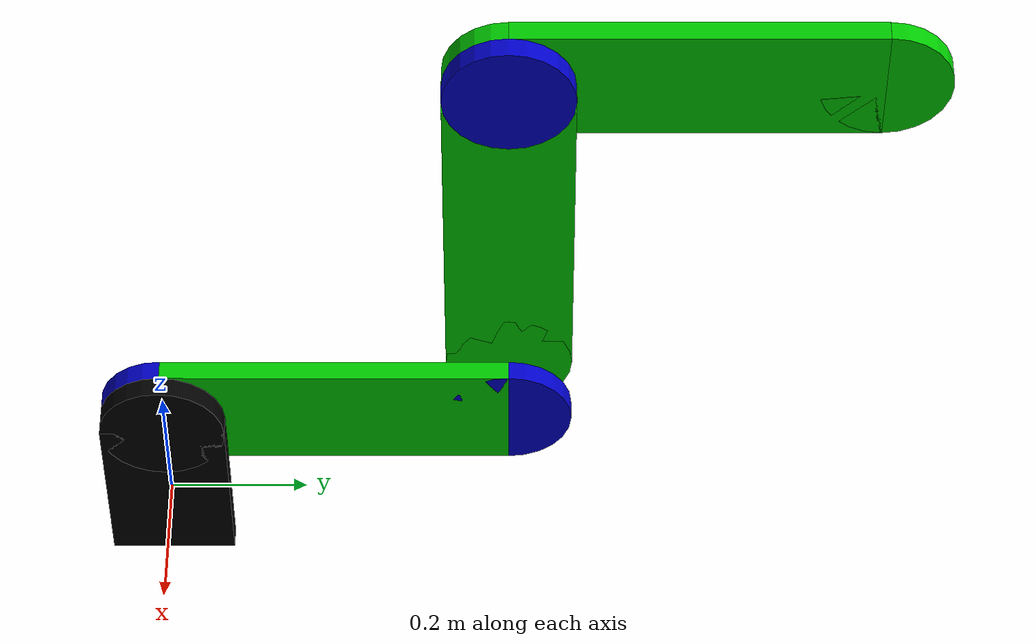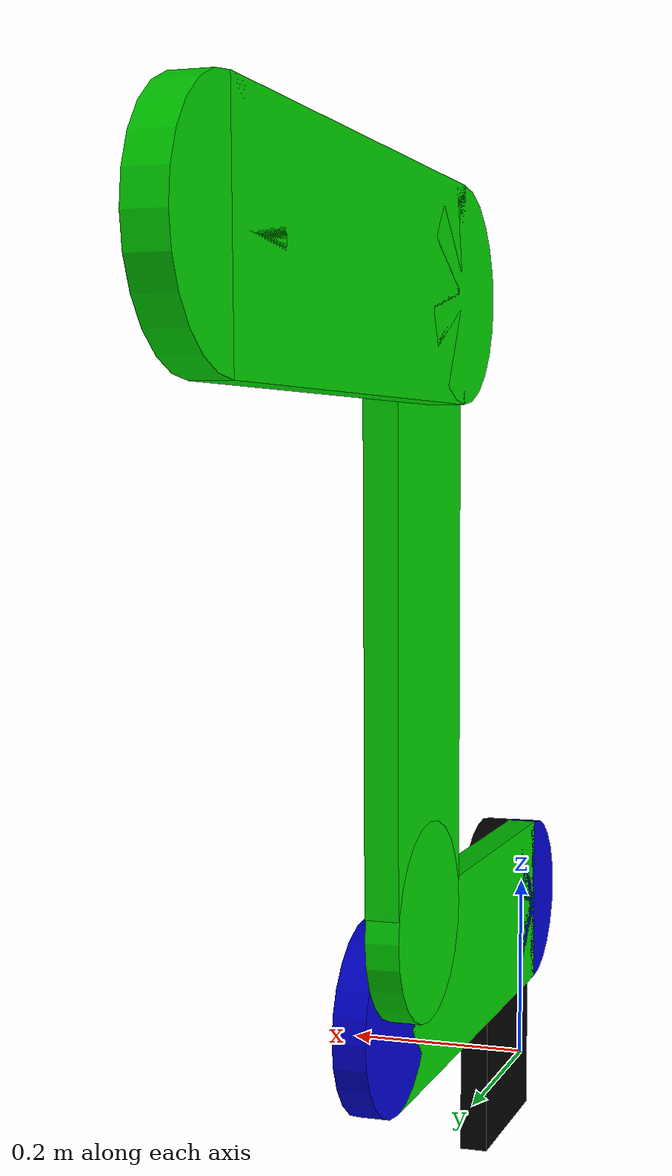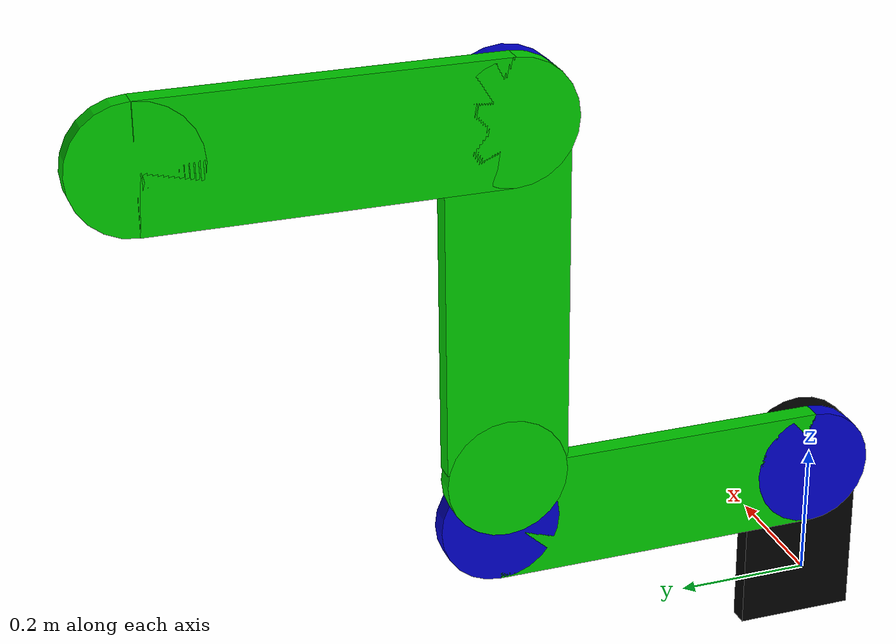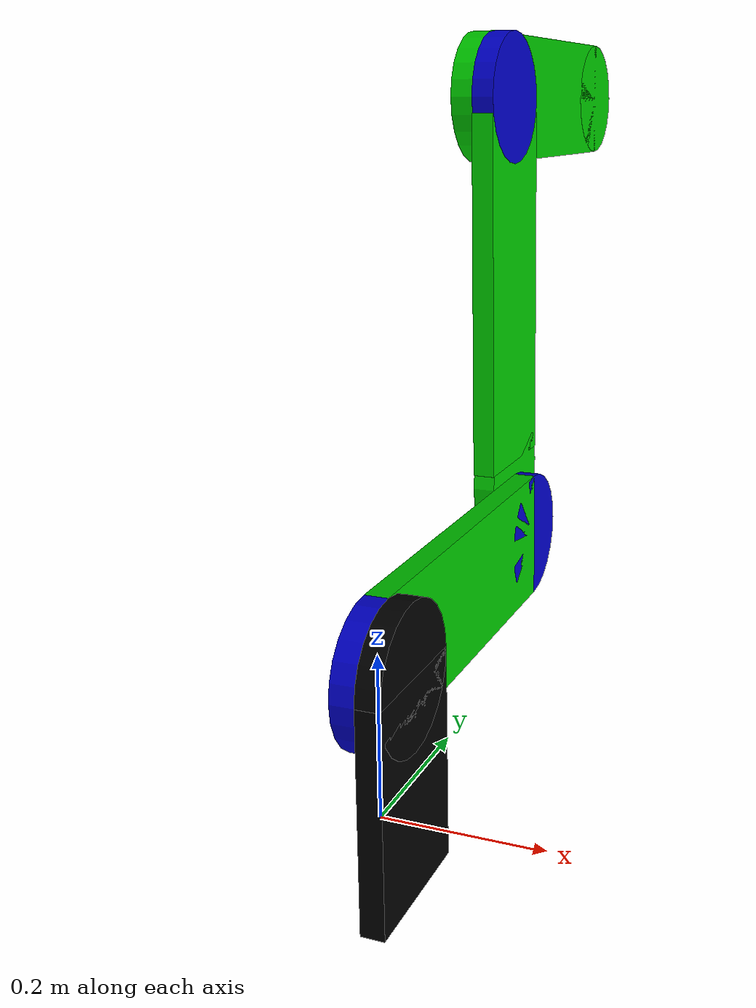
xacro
<?xml version="1.0"?>
<robot xmlns:xacro="http://www.ros.org/wiki/xacro" name="practice">

  <material name="blue">
    <color rgba="0 0 0.8 1"/>
  </material>

  <material name="white">
    <color rgba="1 1 1 1"/> <!-- red green blue alpha-->
  </material>

  <material name="black">
    <color rgba="0 0 0 1"/>
  </material>

  <material name="green">
    <color rgba="0 0.8 0 1"/>
  </material>

  <xacro:property name="width1" value="0.2"/>
  <xacro:property name="len1" value="0.09"/>
  <xacro:property name="len2" value="0.8"/>
  <xacro:property name="len3" value="0.6"/>
  <!--xacro:property name="mass" value="1" /-->
  <xacro:property name="pi" value="3.14159"/>

  <xacro:macro name="default_inertial" params="mass">
    <inertial>
      <mass value="${mass}"/>
      <inertia ixx="1.0" ixy="0" ixz="0" iyy="1.0" iyz="0" izz="1.0"/>
    </inertial>
  </xacro:macro>

  <xacro:macro name="base_inertial" params="mass">
    <inertial>
      <mass value="${mass}"/>
      <inertia ixx="0" ixy="0" ixz="0" iyy="0" iyz="0" izz="0"/>
    </inertial>
  </xacro:macro>

  <link name="base_link">
    <visual>
      <geometry>
        <box size="${len1/3} ${len1*2} ${len1*3}"/>
      </geometry>
      <material name="black"/>
      <origin xyz="${len1/3} 0 ${len1/2}"/>
    </visual>
    <collision>
      <geometry>
        <box size="${len1/3} ${len1*2} ${len1*2}"/>
      </geometry>
    </collision>
    <xacro:base_inertial mass="10000"/>
  </link>

  <joint name="joint00" type="fixed">
    <parent link="base_link"/>
    <child link="link00"/>
    <origin xyz="0 0 0"/>
  </joint>

  <link name="link00"> <!-- same as frame name in rviz -->
    <visual>
      <geometry>
        <cylinder length="${len1/3}" radius="${len1}"/>
      </geometry>
      <material name="black"/>
      <origin xyz="${len1/3} 0 ${len1*2}" rpy="0 ${pi/2} 0"/>
    </visual>
    <collision>
      <geometry>
        <cylinder length="${len1/3}" radius="${len1}"/>
      </geometry>
    </collision>
    <xacro:base_inertial mass="100"/>
  </link>

  <joint name="joint0" type="fixed">
    <parent link="link00"/>
    <child link="link0"/>
    <origin xyz="0 0 ${len1}"/>
  </joint>

  <link name="link0"> <!-- same as frame name in rviz -->
    <visual>
      <geometry>
        <cylinder length="${len1/3}" radius="${len1}"/>
      </geometry>
      <material name="blue"/>
      <origin xyz="0 0 ${len1}" rpy="0 ${pi/2} 0"/>
    </visual>
    <collision>
      <geometry>
        <cylinder length="${len1/3}" radius="${len1}"/>
      </geometry>
    </collision>
    <xacro:default_inertial mass="0.5"/>
  </link>

  <link name="link1">
    <visual>
      <geometry>
        <box size="${len1*2} 0.5 ${len1/3}"/>
      </geometry>
      <origin xyz="0 0.25 0" rpy="0 ${pi/2} 0"/>
      <material name="green"/>
    </visual>
    <collision>
      <geometry>
        <box size="${len1*2} 0.5 ${len1/3}"/>
      </geometry>
    </collision>
    <xacro:default_inertial mass="1.0"/>
  </link>

  <joint name="joint1" type="continuous">
    <parent link="link0"/>
    <child link="link1"/>
    <origin xyz="0 0 ${len1}"/>
    <!--axis xyz="1 0 0"/-->
    <!--limit effort="30" velocity="1.0"/-->
  </joint>

  <transmission name="joint1_transmission">
    <type>transmission_interface/SimpleTransmission</type>
    <actuator name="$joint1_motor">
      <mechanicalReduction>1</mechanicalReduction>
    </actuator>
    <joint name="joint1">
      <hardwareInterface>hardware_interface/PositionJointInterface</hardwareInterface>
    </joint>
  </transmission>

  <link name="link2">
    <visual>
      <geometry>
        <cylinder length="${len1/3}" radius="${len1}"/>
      </geometry>
      <material name="blue"/>
      <origin xyz="0 0 0" rpy="0 ${pi/2} 0"/>
    </visual>
    <collision>
      <geometry>
        <cylinder length="${len1/3}" radius="${len1}"/>
      </geometry>
    </collision>
    <xacro:default_inertial mass="0.5"/>
  </link>

  <joint name="joint2" type="continuous">
    <parent link="link1"/>
    <child link="link2"/>
    <origin xyz="0 0.5 0"/>
  </joint>

  <transmission name="joint2_transmission">
    <type>transmission_interface/SimpleTransmission</type>
    <actuator name="$joint2_motor">
      <mechanicalReduction>1</mechanicalReduction>
    </actuator>
    <joint name="joint2">
      <hardwareInterface>hardware_interface/PositionJointInterface</hardwareInterface>
    </joint>
  </transmission>

  <link name="link3">
    <visual>
      <geometry>
        <cylinder length="${len1/3}" radius="${len1}"/>
      </geometry>
      <material name="green"/>
      <origin xyz="-${len1/3} 0 ${len1}" rpy="0 ${pi/2} 0"/>
    </visual>
    <collision>
      <geometry>
        <cylinder length="${len1/3}" radius="${len1}"/>
      </geometry>
    </collision>
    <xacro:default_inertial mass="0.5"/>
  </link>

  <joint name="joint3" type="fixed">
    <parent link="link2"/>
    <child link="link3"/>
    <origin xyz="0 0 0"/>
  </joint>

  <link name="link4">
    <visual>
      <geometry>
        <box size="${len1/3} ${len1*2} 0.5"/>
      </geometry>
      <material name="green"/>
      <origin xyz="-${len1/3} 0 ${len1*4}" rpy="0 0 0"/>
    </visual>
    <collision>
      <geometry>
        <box size="${len1/3} ${len1*2} 0.5"/>
      </geometry>
    </collision>
    <xacro:default_inertial mass="1.0"/>
  </link>

  <joint name="joint4" type="fixed">
    <parent link="link3"/>
    <child link="link4"/>
    <origin xyz="0 0 0"/>
  </joint>

  <link name="link5">
    <visual>
      <geometry>
        <cylinder length="${len1/3}" radius="${len1}"/>
      </geometry>
      <material name="blue"/>
      <origin xyz="-${len1/3} 0 0" rpy="0 ${pi/2} 0"/>
    </visual>
    <collision>
      <geometry>
        <cylinder length="${len1/3}" radius="${len1}"/>
      </geometry>
    </collision>
    <xacro:default_inertial mass="0.5"/>
  </link>

  <joint name="joint5" type="revolute">
    <parent link="link4"/>
    <child link="link5"/>
    <origin xyz="0 0 ${len1*7}"/>
    <limit lower="-3.14" upper="3.14" effort="0" velocity="3.14"/>
  </joint>

  <transmission name="joint5_transmission">
    <type>transmission_interface/SimpleTransmission</type>
    <actuator name="$joint5_motor">
      <mechanicalReduction>1</mechanicalReduction>
    </actuator>
    <joint name="joint5">
      <hardwareInterface>hardware_interface/PositionJointInterface</hardwareInterface>
    </joint>
  </transmission>

  <link name="link6">
    <visual>
      <geometry>
        <cylinder length="${len1/3}" radius="${len1}"/>
      </geometry>
      <material name="green"/>
      <origin xyz="-${len1/3*2} 0 0" rpy="0 ${pi/2} 0"/>
    </visual>
    <collision>
      <geometry>
        <cylinder length="${len1/3*2}" radius="${len1}"/>
      </geometry>
    </collision>
    <xacro:default_inertial mass="0.5"/>
  </link>

  <joint name="joint6" type="fixed">
    <parent link="link5"/>
    <child link="link6"/>
    <origin xyz="0 0 0"/>
  </joint>

  <link name="link7">
    <visual>
      <geometry>
        <box size="${len1*2} 0.5 ${len1/3}"/>
      </geometry>
      <origin xyz="-${len1/3*2} 0.25 0" rpy="0 ${pi/2} 0"/>
      <material name="green"/>
    </visual>
    <collision>
      <geometry>
        <box size="${len1*2} 0.5 ${len1/3}"/>
      </geometry>
    </collision>
    <xacro:default_inertial mass="1.0"/>
  </link>

  <joint name="joint7" type="fixed">
    <parent link="link6"/>
    <child link="link7"/>
    <origin xyz="0 0 0"/>
  </joint>

  <link name="link8">
    <visual>
      <geometry>
        <cylinder length="${len1/3}" radius="${len1}"/>
      </geometry>
      <material name="green"/>
      <origin xyz="-${len1/3*2} 0 0" rpy="0 ${pi/2} 0"/>
    </visual>
    <collision>
      <geometry>
        <cylinder length="${len1/3*2}" radius="${len1}"/>
      </geometry>
    </collision>
    <xacro:default_inertial mass="0.5"/>
  </link>

  <joint name="joint8" type="fixed">
    <parent link="link7"/>
    <child link="link8"/>
    <origin xyz="0 0.5 0"/>
  </joint>

  <gazebo>
    <plugin name="gazebo_ros_control" filename="libgazebo_ros_control.so">
      <robotNamespace>/</robotNamespace>
    </plugin>
  </gazebo>

</robot>
